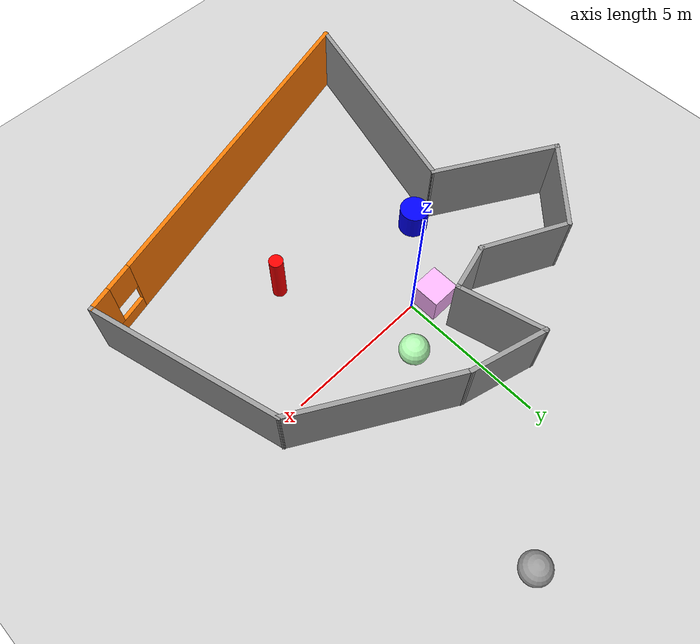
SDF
<sdf version="1.6">
 <world name="default">
  <plugin name="hello" filename="libhello.so"/>
  <light name="sun" type="directional">
   <pose>0 0 10 0 -0 0</pose>
   <diffuse>0.8 0.8 0.8 1</diffuse>
   <specular>0.2 0.2 0.2 1</specular>
   <attenuation>
    <range>1000</range>
    <constant>0.9</constant>
    <linear>0.01</linear>
    <quadratic>0.001</quadratic>
   </attenuation>
   <direction>-0.5 0.1 -0.9</direction>
   <spot><inner_angle>0</inner_angle><outer_angle>0</outer_angle><falloff>0</falloff></spot>
  </light>
  <model name="ground_plane">
   <static>1</static>
   <link name="link">
    <collision name="collision">
     <geometry><plane><normal>0 0 1</normal><size>100 100</size></plane></geometry>
     <surface>
      <contact><collide_bitmask>65535</collide_bitmask></contact>
      <friction><ode><mu>100</mu><mu2>50</mu2></ode></friction>
     </surface>
    </collision>
    <visual name="visual">
     <cast_shadows>0</cast_shadows>
     <geometry><plane><normal>0 0 1</normal><size>100 100</size></plane></geometry>
     <material>
      <script><uri>file://media/materials/scripts/gazebo.material</uri><name>Gazebo/Grey</name></script>
     </material>
    </visual>
   </link>
  </model>
  <gravity>0 0 -9.8</gravity>
  <magnetic_field>6e-06 2.3e-05 -4.2e-05</magnetic_field>
  <atmosphere type="adiabatic"/>
  <physics name="default_physics" default="0" type="ode">
   <max_step_size>0.001</max_step_size>
   <real_time_factor>1</real_time_factor>
   <real_time_update_rate>1000</real_time_update_rate>
  </physics>
  <scene><ambient>0.4 0.4 0.4 1</ambient><background>0.7 0.7 0.7 1</background><shadows>1</shadows></scene>
  <spherical_coordinates>
   <surface_model>EARTH_WGS84</surface_model>
   <latitude_deg>0</latitude_deg>
   <longitude_deg>0</longitude_deg>
   <elevation>0</elevation>
   <heading_deg>0</heading_deg>
  </spherical_coordinates>
  <model name="Untitled">
   <pose>0.56233 -2.59093 0 0 -0 0</pose>
   <link name="Wall_0">
    <collision name="Wall_0_Collision">
     <geometry><box><size>3.25 0.15 2.5</size></box></geometry>
     <pose>0 0 1.25 0 -0 0</pose>
    </collision>
    <visual name="Wall_0_Visual">
     <pose>0 0 1.25 0 -0 0</pose>
     <geometry><box><size>3.25 0.15 2.5</size></box></geometry>
     <material>
      <script><uri>file://media/materials/scripts/gazebo.material</uri><name>Gazebo/Grey</name></script>
      <ambient>1 1 1 1</ambient>
     </material>
     <meta><layer>0</layer></meta>
    </visual>
    <pose>-6.27688 3.71893 0 0 -0 -2.35619</pose>
   </link>
   <link name="Wall_1">
    <collision name="Wall_1_Collision">
     <geometry><box><size>4.5 0.15 2.5</size></box></geometry>
     <pose>0 0 1.25 0 -0 0</pose>
    </collision>
    <visual name="Wall_1_Visual">
     <pose>0 0 1.25 0 -0 0</pose>
     <geometry><box><size>4.5 0.15 2.5</size></box></geometry>
     <material>
      <script><uri>file://media/materials/scripts/gazebo.material</uri><name>Gazebo/Grey</name></script>
      <ambient>1 1 1 1</ambient>
     </material>
     <meta><layer>0</layer></meta>
    </visual>
    <pose>-5.48929 1.53542 0 0 -0 -0.523599</pose>
   </link>
   <link name="Wall_2">
    <collision name="Wall_2_Collision">
     <geometry><box><size>7.5 0.15 2.5</size></box></geometry>
     <pose>0 0 1.25 0 -0 0</pose>
    </collision>
    <visual name="Wall_2_Visual">
     <pose>0 0 1.25 0 -0 0</pose>
     <geometry><box><size>7.5 0.15 2.5</size></box></geometry>
     <material>
      <script><uri>file://media/materials/scripts/gazebo.material</uri><name>Gazebo/Grey</name></script>
      <ambient>1 1 1 1</ambient>
     </material>
     <meta><layer>0</layer></meta>
    </visual>
    <pose>-4.55684 -3.10186 0 0 -0 -1.8326</pose>
   </link>
   <link name="Wall_3">
    <pose>0.939551 -4.92402 0 0 -0 0.261799</pose>
    <visual name="Wall_3_Visual_0">
     <pose>-0.895801 0 1.25 0 -0 0</pose>
     <geometry><box><size>11.7084 0.15 2.5</size></box></geometry>
     <material>
      <script><uri>file://media/materials/scripts/gazebo.material</uri><name>Gazebo/Grey</name></script>
      <ambient>0.996078 0.47451 0.0196078 1</ambient>
     </material>
     <meta><layer>0</layer></meta>
    </visual>
    <collision name="Wall_3_Collision_0">
     <geometry><box><size>11.7084 0.15 2.5</size></box></geometry>
     <pose>-0.895801 0 1.25 0 -0 0</pose>
    </collision>
    <visual name="Wall_3_Visual_1">
     <pose>5.8542 0 0.25 0 -0 0</pose>
     <geometry><box><size>1.7916 0.15 0.5</size></box></geometry>
     <material>
      <script><uri>file://media/materials/scripts/gazebo.material</uri><name>Gazebo/Grey</name></script>
      <ambient>0.996078 0.47451 0.0196078 1</ambient>
     </material>
     <meta><layer>0</layer></meta>
    </visual>
    <collision name="Wall_3_Collision_1">
     <geometry><box><size>1.7916 0.15 0.5</size></box></geometry>
     <pose>5.8542 0 0.25 0 -0 0</pose>
    </collision>
    <visual name="Wall_3_Visual_2">
     <pose>6.32604 0 1.5 0 -0 0</pose>
     <geometry><box><size>0.847917 0.15 2</size></box></geometry>
     <material>
      <script><uri>file://media/materials/scripts/gazebo.material</uri><name>Gazebo/Grey</name></script>
      <ambient>0.996078 0.47451 0.0196078 1</ambient>
     </material>
     <meta><layer>0</layer></meta>
    </visual>
    <collision name="Wall_3_Collision_2">
     <geometry><box><size>0.847917 0.15 2</size></box></geometry>
     <pose>6.32604 0 1.5 0 -0 0</pose>
    </collision>
    <visual name="Wall_3_Visual_3">
     <pose>5.43024 0 1.9 0 -0 0</pose>
     <geometry><box><size>0.943685 0.15 1.2</size></box></geometry>
     <material>
      <script><uri>file://media/materials/scripts/gazebo.material</uri><name>Gazebo/Grey</name></script>
      <ambient>0.996078 0.47451 0.0196078 1</ambient>
     </material>
     <meta><layer>0</layer></meta>
    </visual>
    <collision name="Wall_3_Collision_3">
     <geometry><box><size>0.943685 0.15 1.2</size></box></geometry>
     <pose>5.43024 0 1.9 0 -0 0</pose>
    </collision>
   </link>
   <link name="Wall_4">
    <collision name="Wall_4_Collision">
     <geometry><box><size>6.75 0.15 2.5</size></box></geometry>
     <pose>0 0 1.25 0 -0 0</pose>
    </collision>
    <visual name="Wall_4_Visual">
     <pose>0 0 1.25 0 -0 0</pose>
     <geometry><box><size>6.75 0.15 2.5</size></box></geometry>
     <material>
      <script><uri>file://media/materials/scripts/gazebo.material</uri><name>Gazebo/Grey</name></script>
      <ambient>1 1 1 1</ambient>
     </material>
     <meta><layer>0</layer></meta>
    </visual>
    <pose>6.533 -0.008848 0 0 -0 1.8326</pose>
   </link>
   <link name="Wall_5">
    <collision name="Wall_5_Collision">
     <geometry><box><size>5.75 0.15 2.5</size></box></geometry>
     <pose>0 0 1.25 0 -0 0</pose>
    </collision>
    <visual name="Wall_5_Visual">
     <pose>0 0 1.25 0 -0 0</pose>
     <geometry><box><size>5.75 0.15 2.5</size></box></geometry>
     <material>
      <script><uri>file://media/materials/scripts/gazebo.material</uri><name>Gazebo/Grey</name></script>
      <ambient>1 1 1 1</ambient>
     </material>
     <meta><layer>0</layer></meta>
    </visual>
    <pose>3.25403 4.57871 0 0 -0 2.61799</pose>
   </link>
   <link name="Wall_6">
    <collision name="Wall_6_Collision">
     <geometry><box><size>2.75 0.15 2.5</size></box></geometry>
     <pose>0 0 1.25 0 -0 0</pose>
    </collision>
    <visual name="Wall_6_Visual">
     <pose>0 0 1.25 0 -0 0</pose>
     <geometry><box><size>2.75 0.15 2.5</size></box></geometry>
     <material>
      <script><uri>file://media/materials/scripts/gazebo.material</uri><name>Gazebo/Grey</name></script>
      <ambient>1 1 1 1</ambient>
     </material>
     <meta><layer>0</layer></meta>
    </visual>
    <pose>-0.426546 6.31517 0 0 -0 2.87979</pose>
   </link>
   <link name="Wall_7">
    <collision name="Wall_7_Collision">
     <geometry><box><size>3 0.15 2.5</size></box></geometry>
     <pose>0 0 1.25 0 -0 0</pose>
    </collision>
    <visual name="Wall_7_Visual">
     <pose>0 0 1.25 0 -0 0</pose>
     <geometry><box><size>3 0.15 2.5</size></box></geometry>
     <material>
      <script><uri>file://media/materials/scripts/gazebo.material</uri><name>Gazebo/Grey</name></script>
      <ambient>1 1 1 1</ambient>
     </material>
     <meta><layer>0</layer></meta>
    </visual>
    <pose>-1.31343 5.27519 0 0 -0 -1.309</pose>
   </link>
   <link name="Wall_8">
    <collision name="Wall_8_Collision">
     <geometry><box><size>1.75 0.15 2.5</size></box></geometry>
     <pose>0 0 1.25 0 -0 0</pose>
    </collision>
    <visual name="Wall_8_Visual">
     <pose>0 0 1.25 0 -0 0</pose>
     <geometry><box><size>1.75 0.15 2.5</size></box></geometry>
     <material>
      <script><uri>file://media/materials/scripts/gazebo.material</uri><name>Gazebo/Grey</name></script>
      <ambient>1 1 1 1</ambient>
     </material>
     <meta><layer>0</layer></meta>
    </visual>
    <pose>-1.71736 3.69169 0 0 -0 -2.87979</pose>
   </link>
   <link name="Wall_9">
    <collision name="Wall_9_Collision">
     <geometry><box><size>3.15166 0.15 2.5</size></box></geometry>
     <pose>0 0 1.25 0 -0 0</pose>
    </collision>
    <visual name="Wall_9_Visual">
     <pose>0 0 1.25 0 -0 0</pose>
     <geometry><box><size>3.15166 0.15 2.5</size></box></geometry>
     <material>
      <script><uri>file://media/materials/scripts/gazebo.material</uri><name>Gazebo/Grey</name></script>
      <ambient>1 1 1 1</ambient>
     </material>
     <meta><layer>0</layer></meta>
    </visual>
    <pose>-3.83548 4.14979 0 0 -0 2.68244</pose>
   </link>
   <static>1</static>
  </model>
  <model name="my_ball">
   <link name="link">
    <inertial>
     <mass>1</mass>
     <inertia><ixx>0.1</ixx><ixy>0</ixy><ixz>0</ixz><iyy>0.1</iyy><iyz>0</iyz><izz>0.1</izz></inertia>
    </inertial>
    <visual name="visual">
     <geometry><sphere><radius>0.5</radius></sphere></geometry>
     <material>
      <script><name>Gazebo/Grey</name><uri>file://media/materials/scripts/gazebo.material</uri></script>
      <shader type="pixel"><normal_map>__default__</normal_map></shader>
      <ambient>1 1 1 1</ambient>
      <diffuse>1 1 1 1</diffuse>
      <specular>1 1 1 1</specular>
      <emissive>1 1 1 1</emissive>
     </material>
    </visual>
    <collision name="collision">
     <geometry><sphere><radius>0.5</radius></sphere></geometry>
     <surface>
      <friction>
       <ode><mu>1</mu><mu2>1</mu2><fdir1>0 0 0</fdir1><slip1>0</slip1><slip2>0</slip2></ode>
       <torsional>
        <coefficient>1</coefficient>
        <patch_radius>0</patch_radius>
        <surface_radius>0</surface_radius>
        <use_patch_radius>1</use_patch_radius>
        <ode><slip>0</slip></ode>
       </torsional>
      </friction>
      <bounce><restitution_coefficient>0</restitution_coefficient><threshold>1e+06</threshold></bounce>
      <contact>
       <collide_without_contact>0</collide_without_contact>
       <collide_without_contact_bitmask>1</collide_without_contact_bitmask>
       <collide_bitmask>1</collide_bitmask>
       <ode>
        <soft_cfm>0</soft_cfm>
        <soft_erp>0.2</soft_erp>
        <kp>1e+13</kp>
        <kd>1</kd>
        <max_vel>0.01</max_vel>
        <min_depth>0</min_depth>
       </ode>
       <bullet>
        <split_impulse>1</split_impulse>
        <split_impulse_penetration_threshold>-0.01</split_impulse_penetration_threshold>
        <soft_cfm>0</soft_cfm>
        <soft_erp>0.2</soft_erp>
        <kp>1e+13</kp>
        <kd>1</kd>
       </bullet>
      </contact>
     </surface>
    </collision>
   </link>
   <static>0</static>
   <pose>3.73171 8.06734 0.5 0 -0 0</pose>
  </model>
  <plugin name="gazebo_occupancy_map" filename="libgazebo_2Dmap_plugin.so">
   <map_resolution>0.1</map_resolution>
   <map_height>0.3</map_height>
   <map_size_x>10</map_size_x>
   <map_size_y>10</map_size_y>
   <init_robot_x>0</init_robot_x>
   <init_robot_y>0</init_robot_y>
  </plugin>
  <plugin name="collision_map_creator" filename="libcollision_map_creator.so"/>
  <model name="unit_cylinder_0">
   <link name="link">
    <inertial>
     <mass>0.424988</mass>
     <inertia>
      <ixx>0.134113</ixx>
      <ixy>0</ixy>
      <ixz>0</ixz>
      <iyy>0.134113</iyy>
      <iyz>0</iyz>
      <izz>0.0118661</izz>
     </inertia>
    </inertial>
    <visual name="visual">
     <geometry><cylinder><radius>0.236309</radius><length>1.90244</length></cylinder></geometry>
     <material>
      <script><name>Gazebo/Grey</name><uri>file://media/materials/scripts/gazebo.material</uri></script>
      <shader type="pixel"><normal_map>__default__</normal_map></shader>
      <ambient>1 0 0 1</ambient>
      <diffuse>1 0 0 1</diffuse>
      <specular>1 0 0 1</specular>
      <emissive>1 0 0 1</emissive>
     </material>
    </visual>
    <collision name="collision">
     <geometry><cylinder><radius>0.236309</radius><length>1.90244</length></cylinder></geometry>
     <surface>
      <friction>
       <ode><mu>1</mu><mu2>1</mu2><fdir1>0 0 0</fdir1><slip1>0</slip1><slip2>0</slip2></ode>
       <torsional>
        <coefficient>1</coefficient>
        <patch_radius>0</patch_radius>
        <surface_radius>0</surface_radius>
        <use_patch_radius>1</use_patch_radius>
        <ode><slip>0</slip></ode>
       </torsional>
      </friction>
      <bounce><restitution_coefficient>0</restitution_coefficient><threshold>1e+06</threshold></bounce>
      <contact>
       <collide_without_contact>0</collide_without_contact>
       <collide_without_contact_bitmask>1</collide_without_contact_bitmask>
       <collide_bitmask>1</collide_bitmask>
       <ode>
        <soft_cfm>0</soft_cfm>
        <soft_erp>0.2</soft_erp>
        <kp>1e+13</kp>
        <kd>1</kd>
        <max_vel>0.01</max_vel>
        <min_depth>0</min_depth>
       </ode>
       <bullet>
        <split_impulse>1</split_impulse>
        <split_impulse_penetration_threshold>-0.01</split_impulse_penetration_threshold>
        <soft_cfm>0</soft_cfm>
        <soft_erp>0.2</soft_erp>
        <kp>1e+13</kp>
        <kd>1</kd>
       </bullet>
      </contact>
     </surface>
    </collision>
   </link>
   <static>0</static>
   <pose>2.73352 -3.4993 0.951211 0 -0 4e-06</pose>
  </model>
  <model name="unit_sphere">
   <link name="link">
    <inertial>
     <mass>1</mass>
     <inertia><ixx>0.1</ixx><ixy>0</ixy><ixz>0</ixz><iyy>0.1</iyy><iyz>0</iyz><izz>0.1</izz></inertia>
    </inertial>
    <visual name="visual">
     <geometry><sphere><radius>0.5</radius></sphere></geometry>
     <material>
      <script><name>Gazebo/Grey</name><uri>file://media/materials/scripts/gazebo.material</uri></script>
      <shader type="pixel"><normal_map>__default__</normal_map></shader>
      <ambient>0.3 1 0.3 1</ambient>
      <diffuse>0.7 1 0.7 1</diffuse>
      <specular>0.01 1 0.01 1</specular>
      <emissive>0 1 0 1</emissive>
     </material>
    </visual>
    <collision name="collision">
     <geometry><sphere><radius>0.5</radius></sphere></geometry>
     <surface>
      <friction>
       <ode><mu>1</mu><mu2>1</mu2><fdir1>0 0 0</fdir1><slip1>0</slip1><slip2>0</slip2></ode>
       <torsional>
        <coefficient>1</coefficient>
        <patch_radius>0</patch_radius>
        <surface_radius>0</surface_radius>
        <use_patch_radius>1</use_patch_radius>
        <ode><slip>0</slip></ode>
       </torsional>
      </friction>
      <bounce><restitution_coefficient>0</restitution_coefficient><threshold>1e+06</threshold></bounce>
      <contact>
       <collide_without_contact>0</collide_without_contact>
       <collide_without_contact_bitmask>1</collide_without_contact_bitmask>
       <collide_bitmask>1</collide_bitmask>
       <ode>
        <soft_cfm>0</soft_cfm>
        <soft_erp>0.2</soft_erp>
        <kp>1e+13</kp>
        <kd>1</kd>
        <max_vel>0.01</max_vel>
        <min_depth>0</min_depth>
       </ode>
       <bullet>
        <split_impulse>1</split_impulse>
        <split_impulse_penetration_threshold>-0.01</split_impulse_penetration_threshold>
        <soft_cfm>0</soft_cfm>
        <soft_erp>0.2</soft_erp>
        <kp>1e+13</kp>
        <kd>1</kd>
       </bullet>
      </contact>
     </surface>
    </collision>
   </link>
   <static>0</static>
   <pose>1.29633 1.26485 0.5 0 -0 0</pose>
  </model>
  <model name="unit_cylinder">
   <link name="link">
    <inertial>
     <mass>1</mass>
     <inertia><ixx>0.145833</ixx><ixy>0</ixy><ixz>0</ixz><iyy>0.145833</iyy><iyz>0</iyz><izz>0.125</izz></inertia>
    </inertial>
    <visual name="visual">
     <geometry><cylinder><radius>0.5</radius><length>1</length></cylinder></geometry>
     <material>
      <script><name>Gazebo/Grey</name><uri>file://media/materials/scripts/gazebo.material</uri></script>
      <shader type="pixel"><normal_map>__default__</normal_map></shader>
      <ambient>0 0 1 1</ambient>
      <diffuse>0 0 1 1</diffuse>
      <specular>0 0.01 1 1</specular>
      <emissive>0 0 1 1</emissive>
     </material>
    </visual>
    <collision name="collision">
     <geometry><cylinder><radius>0.5</radius><length>1</length></cylinder></geometry>
     <surface>
      <friction>
       <ode><mu>1</mu><mu2>1</mu2><fdir1>0 0 0</fdir1><slip1>0</slip1><slip2>0</slip2></ode>
       <torsional>
        <coefficient>1</coefficient>
        <patch_radius>0</patch_radius>
        <surface_radius>0</surface_radius>
        <use_patch_radius>1</use_patch_radius>
        <ode><slip>0</slip></ode>
       </torsional>
      </friction>
      <bounce><restitution_coefficient>0</restitution_coefficient><threshold>1e+06</threshold></bounce>
      <contact>
       <collide_without_contact>0</collide_without_contact>
       <collide_without_contact_bitmask>1</collide_without_contact_bitmask>
       <collide_bitmask>1</collide_bitmask>
       <ode>
        <soft_cfm>0</soft_cfm>
        <soft_erp>0.2</soft_erp>
        <kp>1e+13</kp>
        <kd>1</kd>
        <max_vel>0.01</max_vel>
        <min_depth>0</min_depth>
       </ode>
       <bullet>
        <split_impulse>1</split_impulse>
        <split_impulse_penetration_threshold>-0.01</split_impulse_penetration_threshold>
        <soft_cfm>0</soft_cfm>
        <soft_erp>0.2</soft_erp>
        <kp>1e+13</kp>
        <kd>1</kd>
       </bullet>
      </contact>
     </surface>
    </collision>
   </link>
   <static>0</static>
   <pose>-2.37467 -2.19604 0.499997 3e-06 4e-06 -0</pose>
  </model>
  <model name="unit_box">
   <link name="link">
    <inertial>
     <mass>1</mass>
     <inertia>
      <ixx>0.166667</ixx>
      <ixy>0</ixy>
      <ixz>0</ixz>
      <iyy>0.166667</iyy>
      <iyz>0</iyz>
      <izz>0.166667</izz>
     </inertia>
    </inertial>
    <visual name="visual">
     <geometry><box><size>1 1 1</size></box></geometry>
     <material>
      <script><name>Gazebo/Grey</name><uri>file://media/materials/scripts/gazebo.material</uri></script>
      <shader type="pixel"><normal_map>__default__</normal_map></shader>
      <ambient>0.3 0.3 0.3 1</ambient>
      <diffuse>1 0.7 1 1</diffuse>
      <specular>1 0.01 1 1</specular>
      <emissive>1 0 1 1</emissive>
     </material>
    </visual>
    <collision name="collision">
     <geometry><box><size>1 1 1</size></box></geometry>
     <surface>
      <friction>
       <ode><mu>1</mu><mu2>1</mu2><fdir1>0 0 0</fdir1><slip1>0</slip1><slip2>0</slip2></ode>
       <torsional>
        <coefficient>1</coefficient>
        <patch_radius>0</patch_radius>
        <surface_radius>0</surface_radius>
        <use_patch_radius>1</use_patch_radius>
        <ode><slip>0</slip></ode>
       </torsional>
      </friction>
      <bounce><restitution_coefficient>0</restitution_coefficient><threshold>1e+06</threshold></bounce>
      <contact>
       <collide_without_contact>0</collide_without_contact>
       <collide_without_contact_bitmask>1</collide_without_contact_bitmask>
       <collide_bitmask>1</collide_bitmask>
       <ode>
        <soft_cfm>0</soft_cfm>
        <soft_erp>0.2</soft_erp>
        <kp>1e+13</kp>
        <kd>1</kd>
        <max_vel>0.01</max_vel>
        <min_depth>0</min_depth>
       </ode>
       <bullet>
        <split_impulse>1</split_impulse>
        <split_impulse_penetration_threshold>-0.01</split_impulse_penetration_threshold>
        <soft_cfm>0</soft_cfm>
        <soft_erp>0.2</soft_erp>
        <kp>1e+13</kp>
        <kd>1</kd>
       </bullet>
      </contact>
     </surface>
    </collision>
   </link>
   <static>0</static>
   <pose>-0.625945 0.339677 0.5 0 -0 0</pose>
  </model>
 </world>
</sdf>
